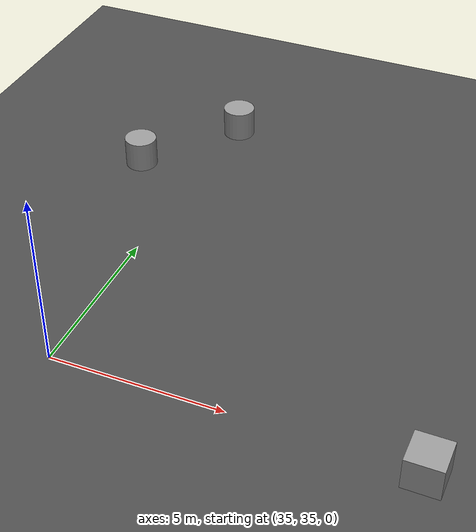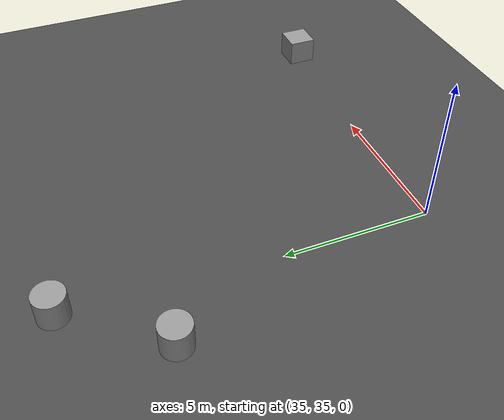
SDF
<sdf version="1.7">
 <world name="default">
  <model name="ground_plane">
   <static>1</static>
   <link name="link">
    <collision name="collision">
     <geometry><plane><normal>0 0 1</normal><size>100 100</size></plane></geometry>
     <surface><friction><ode><mu>100</mu><mu2>50</mu2></ode></friction></surface>
    </collision>
    <visual name="visual">
     <cast_shadows>0</cast_shadows>
     <geometry><plane><normal>0 0 1</normal><size>100 100</size></plane></geometry>
     <material>
      <script><uri>file://media/materials/scripts/gazebo.material</uri><name>Gazebo/Grey</name></script>
     </material>
    </visual>
   </link>
  </model>
  <model name="obstaculos">
   <link name="link_56">
    <inertial>
     <mass>1</mass>
     <inertia>
      <ixx>0.166667</ixx>
      <ixy>0</ixy>
      <ixz>0</ixz>
      <iyy>0.166667</iyy>
      <iyz>0</iyz>
      <izz>0.166667</izz>
     </inertia>
    </inertial>
    <pose>3.88654 88.0129 0 0 -0 0</pose>
    <visual name="visual">
     <geometry><box><size>1 1 1</size></box></geometry>
     <material>
      <lighting>1</lighting>
      <script><uri>file://media/materials/scripts/gazebo.material</uri><name>Gazebo/Grey</name></script>
      <shader type="pixel"/>
     </material>
    </visual>
    <collision name="collision">
     <geometry><box><size>1 1 1</size></box></geometry>
     <surface>
      <friction>
       <ode><mu>1</mu><mu2>1</mu2><fdir1>0 0 0</fdir1><slip1>0</slip1><slip2>0</slip2></ode>
       <torsional>
        <coefficient>1</coefficient>
        <patch_radius>0</patch_radius>
        <surface_radius>0</surface_radius>
        <use_patch_radius>1</use_patch_radius>
        <ode><slip>0</slip></ode>
       </torsional>
      </friction>
      <bounce><restitution_coefficient>0</restitution_coefficient><threshold>1e+06</threshold></bounce>
      <contact>
       <collide_without_contact>0</collide_without_contact>
       <collide_without_contact_bitmask>1</collide_without_contact_bitmask>
       <collide_bitmask>1</collide_bitmask>
       <ode>
        <soft_cfm>0</soft_cfm>
        <soft_erp>0.2</soft_erp>
        <kp>1e+13</kp>
        <kd>1</kd>
        <max_vel>0.01</max_vel>
        <min_depth>0</min_depth>
       </ode>
       <bullet>
        <split_impulse>1</split_impulse>
        <split_impulse_penetration_threshold>-0.01</split_impulse_penetration_threshold>
        <soft_cfm>0</soft_cfm>
        <soft_erp>0.2</soft_erp>
        <kp>1e+13</kp>
        <kd>1</kd>
       </bullet>
      </contact>
     </surface>
    </collision>
   </link>
   <link name="link_57">
    <inertial>
     <mass>1</mass>
     <inertia><ixx>0.145833</ixx><ixy>0</ixy><ixz>0</ixz><iyy>0.145833</iyy><iyz>0</iyz><izz>0.125</izz></inertia>
    </inertial>
    <pose>-8.1375 97.1229 0 0 -0 0</pose>
    <visual name="visual">
     <geometry><cylinder><radius>0.5</radius><length>1</length></cylinder></geometry>
     <material>
      <lighting>1</lighting>
      <script><uri>file://media/materials/scripts/gazebo.material</uri><name>Gazebo/Grey</name></script>
      <shader type="pixel"/>
     </material>
    </visual>
    <collision name="collision">
     <geometry><cylinder><radius>0.5</radius><length>1</length></cylinder></geometry>
     <surface>
      <friction>
       <ode><mu>1</mu><mu2>1</mu2><fdir1>0 0 0</fdir1><slip1>0</slip1><slip2>0</slip2></ode>
       <torsional>
        <coefficient>1</coefficient>
        <patch_radius>0</patch_radius>
        <surface_radius>0</surface_radius>
        <use_patch_radius>1</use_patch_radius>
        <ode><slip>0</slip></ode>
       </torsional>
      </friction>
      <bounce><restitution_coefficient>0</restitution_coefficient><threshold>1e+06</threshold></bounce>
      <contact>
       <collide_without_contact>0</collide_without_contact>
       <collide_without_contact_bitmask>1</collide_without_contact_bitmask>
       <collide_bitmask>1</collide_bitmask>
       <ode>
        <soft_cfm>0</soft_cfm>
        <soft_erp>0.2</soft_erp>
        <kp>1e+13</kp>
        <kd>1</kd>
        <max_vel>0.01</max_vel>
        <min_depth>0</min_depth>
       </ode>
       <bullet>
        <split_impulse>1</split_impulse>
        <split_impulse_penetration_threshold>-0.01</split_impulse_penetration_threshold>
        <soft_cfm>0</soft_cfm>
        <soft_erp>0.2</soft_erp>
        <kp>1e+13</kp>
        <kd>1</kd>
       </bullet>
      </contact>
     </surface>
    </collision>
   </link>
   <link name="link_58">
    <inertial>
     <mass>1</mass>
     <inertia><ixx>0.145833</ixx><ixy>0</ixy><ixz>0</ixz><iyy>0.145833</iyy><iyz>0</iyz><izz>0.125</izz></inertia>
    </inertial>
    <pose>-5.95007 100.027 0 0 -0 0</pose>
    <visual name="visual">
     <geometry><cylinder><radius>0.5</radius><length>1</length></cylinder></geometry>
     <material>
      <lighting>1</lighting>
      <script><uri>file://media/materials/scripts/gazebo.material</uri><name>Gazebo/Grey</name></script>
      <shader type="pixel"/>
     </material>
    </visual>
    <collision name="collision">
     <geometry><cylinder><radius>0.5</radius><length>1</length></cylinder></geometry>
     <surface>
      <friction>
       <ode><mu>1</mu><mu2>1</mu2><fdir1>0 0 0</fdir1><slip1>0</slip1><slip2>0</slip2></ode>
       <torsional>
        <coefficient>1</coefficient>
        <patch_radius>0</patch_radius>
        <surface_radius>0</surface_radius>
        <use_patch_radius>1</use_patch_radius>
        <ode><slip>0</slip></ode>
       </torsional>
      </friction>
      <bounce><restitution_coefficient>0</restitution_coefficient><threshold>1e+06</threshold></bounce>
      <contact>
       <collide_without_contact>0</collide_without_contact>
       <collide_without_contact_bitmask>1</collide_without_contact_bitmask>
       <collide_bitmask>1</collide_bitmask>
       <ode>
        <soft_cfm>0</soft_cfm>
        <soft_erp>0.2</soft_erp>
        <kp>1e+13</kp>
        <kd>1</kd>
        <max_vel>0.01</max_vel>
        <min_depth>0</min_depth>
       </ode>
       <bullet>
        <split_impulse>1</split_impulse>
        <split_impulse_penetration_threshold>-0.01</split_impulse_penetration_threshold>
        <soft_cfm>0</soft_cfm>
        <soft_erp>0.2</soft_erp>
        <kp>1e+13</kp>
        <kd>1</kd>
       </bullet>
      </contact>
     </surface>
    </collision>
   </link>
   <static>0</static>
   <pose>41.0394 -53.1358 0.499893 -6e-06 5e-06 -0.002479</pose>
  </model>
  <model name="asphalt_plane">
   <link name="link">
    <inertial>
     <mass>1e+23</mass>
     <inertia>
      <ixx>2.07641e+27</ixx>
      <ixy>0</ixy>
      <ixz>0</ixz>
      <iyy>2.7889e+27</iyy>
      <iyz>0</iyz>
      <izz>4.86531e+27</izz>
     </inertia>
    </inertial>
    <visual name="visual">
     <cast_shadows>0</cast_shadows>
     <geometry><box><size>578.505 499.168 0.1</size></box></geometry>
     <material>
      <script>
       <uri>model://asphalt_plane/materials/scripts</uri>
       <uri>model://asphalt_plane/materials/textures</uri>
       <name>vrc/asphalt</name>
      </script>
      <shader type="pixel"><normal_map>__default__</normal_map></shader>
      <ambient>0.5 0.5 0.5 1</ambient>
      <diffuse>0.5 0.5 0.5 1</diffuse>
      <specular>0.2 0.2 0.2 1</specular>
      <emissive>0 0 0 1</emissive>
     </material>
    </visual>
    <collision name="collision">
     <geometry><box><size>578.505 499.168 0.1</size></box></geometry>
     <surface>
      <friction>
       <ode><mu>1</mu><mu2>1</mu2><fdir1>0 0 0</fdir1><slip1>0</slip1><slip2>0</slip2></ode>
       <torsional>
        <coefficient>1</coefficient>
        <patch_radius>0</patch_radius>
        <surface_radius>0</surface_radius>
        <use_patch_radius>1</use_patch_radius>
        <ode><slip>0</slip></ode>
       </torsional>
      </friction>
      <bounce><restitution_coefficient>0</restitution_coefficient><threshold>1e+06</threshold></bounce>
      <contact>
       <collide_without_contact>0</collide_without_contact>
       <collide_without_contact_bitmask>1</collide_without_contact_bitmask>
       <collide_bitmask>1</collide_bitmask>
       <ode>
        <soft_cfm>0</soft_cfm>
        <soft_erp>0.2</soft_erp>
        <kp>1e+13</kp>
        <kd>1</kd>
        <max_vel>0.01</max_vel>
        <min_depth>0</min_depth>
       </ode>
       <bullet>
        <split_impulse>1</split_impulse>
        <split_impulse_penetration_threshold>-0.01</split_impulse_penetration_threshold>
        <soft_cfm>0</soft_cfm>
        <soft_erp>0.2</soft_erp>
        <kp>1e+13</kp>
        <kd>1</kd>
       </bullet>
      </contact>
     </surface>
    </collision>
   </link>
   <static>1</static>
   <pose>0.107557 -0.074396 0 0 -0 0</pose>
  </model>
 </world>
</sdf>
